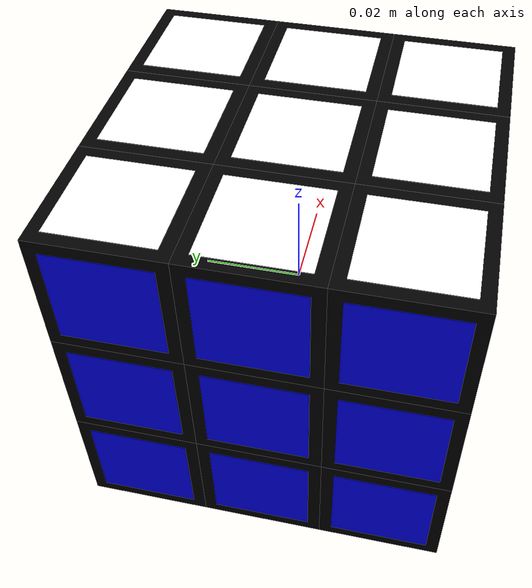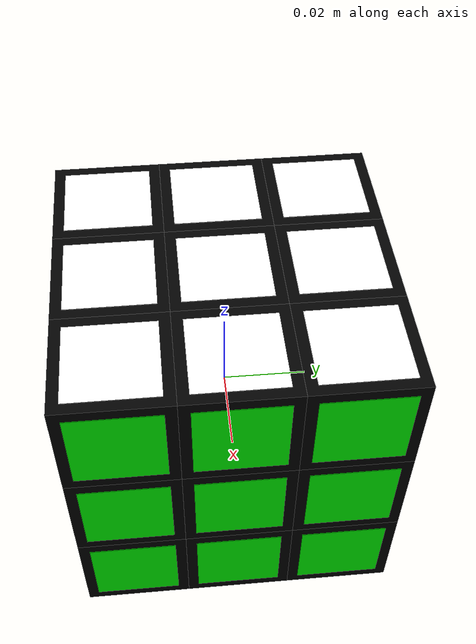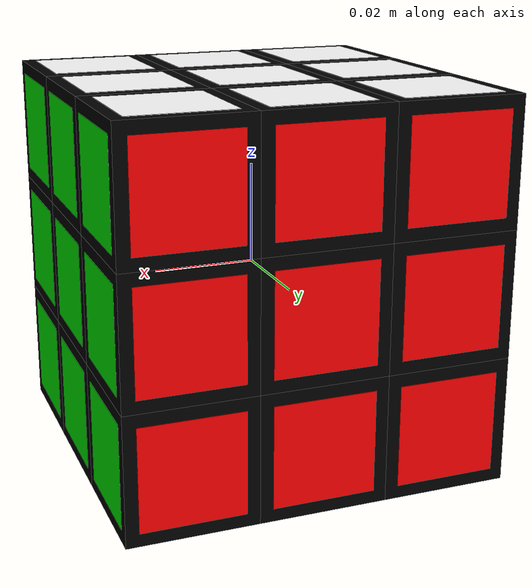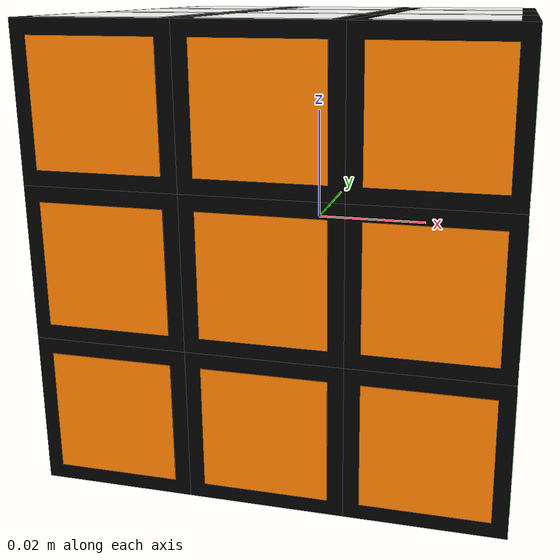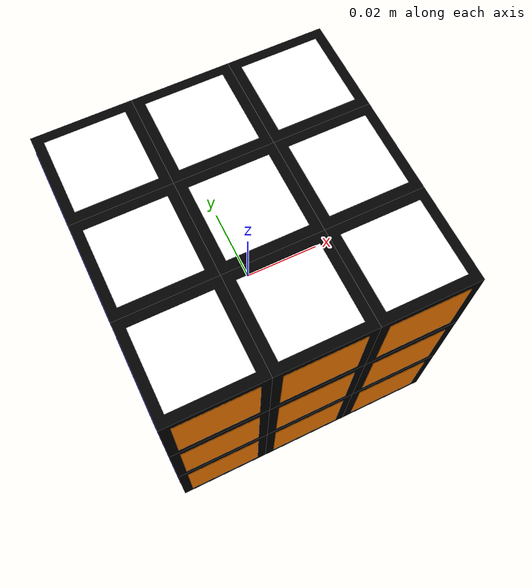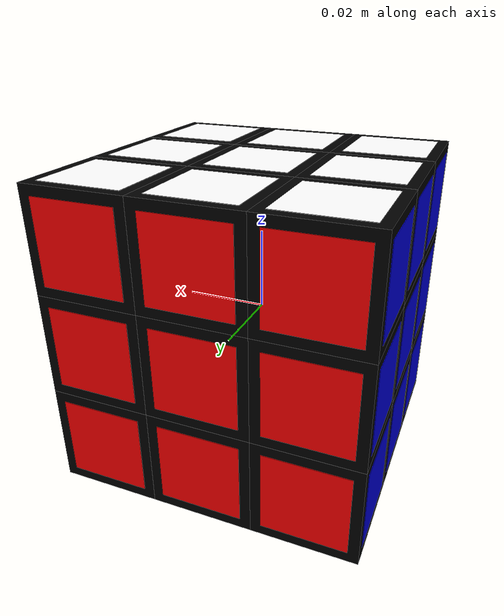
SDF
<?xml version="1.0"?>
<!-- Autogenerated by rubiks_cube.ipynb -->
<sdf version="1.7">
  <model name="rubiks_cube">
    <link name="center"/>

    <link name="box_m1_m1_m1">
      <pose>-0.025 -0.025 -0.025 0 0 0</pose>
      <inertial>
        <mass>0.03</mass>
        <inertia>
          <ixx>0.0003125</ixx>
          <ixy>0.0</ixy>
          <ixz>0.0</ixz>
          <iyy>0.0003125</iyy>
          <iyz>0.0</iyz>
          <izz>0.0003125</izz>
        </inertia>
      </inertial>
      <collision name="collision">
        <geometry>
          <box>
            <size>0.025 0.025 0.025</size>
          </box>
        </geometry>
        <drake:proximity_properties>
          <drake:compliant_hydroelastic/>
          <drake:hydroelastic_modulus>1e7</drake:hydroelastic_modulus>
          <drake:mu_static>100.0</drake:mu_static>
          <drake:mu_dynamic>1.0</drake:mu_dynamic>
          <drake:hunt_crossley_dissipation>1.25</drake:hunt_crossley_dissipation>
        </drake:proximity_properties>
      </collision>
      <visual name="black">
        <geometry>
          <box>
            <size>0.025 0.025 0.025</size>
          </box>
        </geometry>
        <material>
          <diffuse>0 0 0 1</diffuse>
        </material>
      </visual>
      <visual name="x">
        <pose>-0.0125 0 0 0 0 0</pose>
        <geometry>
          <box>
            <size>0.0002 0.02 0.02</size>
          </box>
        </geometry>
        <material>
          <diffuse>0 0 1 1</diffuse>
        </material>
      </visual>
      <visual name="y">
        <pose>0 -0.0125 0 0 0 0</pose>
        <geometry>
          <box>
            <size>0.02 0.0002 0.02</size>
          </box>
        </geometry>
        <material>
          <diffuse>1 0.5 0 1</diffuse>
        </material>
      </visual>
      <visual name="z">
        <pose>0 0 -0.0125 0 0 0</pose>
        <geometry>
          <box>
            <size>0.02 0.02 0.0002</size>
          </box>
        </geometry>
        <material>
          <diffuse>1 1 0 1</diffuse>
        </material>
      </visual>
    </link>
    <joint name="ball_m1_m1_m1" type="ball">
        <pose>0.025 0.025 0.025 0 0 0</pose> <!-- in child frame -->
        <parent>center</parent>
        <child>box_m1_m1_m1</child>
        <axis>
            <dynamics><damping>0.1</damping></dynamics>
            <limit><effort>0</effort></limit>
        </axis>
    </joint>

    <link name="box_m1_m1_0">
      <pose>-0.025 -0.025 0.0 0 0 0</pose>
      <inertial>
        <mass>0.03</mass>
        <inertia>
          <ixx>0.0003125</ixx>
          <ixy>0.0</ixy>
          <ixz>0.0</ixz>
          <iyy>0.0003125</iyy>
          <iyz>0.0</iyz>
          <izz>0.0003125</izz>
        </inertia>
      </inertial>
      <collision name="collision">
        <geometry>
          <box>
            <size>0.025 0.025 0.025</size>
          </box>
        </geometry>
        <drake:proximity_properties>
          <drake:compliant_hydroelastic/>
          <drake:hydroelastic_modulus>1e7</drake:hydroelastic_modulus>
          <drake:mu_static>100.0</drake:mu_static>
          <drake:mu_dynamic>1.0</drake:mu_dynamic>
          <drake:hunt_crossley_dissipation>1.25</drake:hunt_crossley_dissipation>
        </drake:proximity_properties>
      </collision>
      <visual name="black">
        <geometry>
          <box>
            <size>0.025 0.025 0.025</size>
          </box>
        </geometry>
        <material>
          <diffuse>0 0 0 1</diffuse>
        </material>
      </visual>
      <visual name="x">
        <pose>-0.0125 0 0 0 0 0</pose>
        <geometry>
          <box>
            <size>0.0002 0.02 0.02</size>
          </box>
        </geometry>
        <material>
          <diffuse>0 0 1 1</diffuse>
        </material>
      </visual>
      <visual name="y">
        <pose>0 -0.0125 0 0 0 0</pose>
        <geometry>
          <box>
            <size>0.02 0.0002 0.02</size>
          </box>
        </geometry>
        <material>
          <diffuse>1 0.5 0 1</diffuse>
        </material>
      </visual>
      <visual name="z">
        <pose>0 0 0.0 0 0 0</pose>
        <geometry>
          <box>
            <size>0.02 0.02 0.0002</size>
          </box>
        </geometry>
        <material>
          <diffuse>1 1 1 1</diffuse>
        </material>
      </visual>
    </link>
    <joint name="ball_m1_m1_0" type="ball">
        <pose>0.025 0.025 0.0 0 0 0</pose> <!-- in child frame -->
        <parent>center</parent>
        <child>box_m1_m1_0</child>
        <axis>
            <dynamics><damping>0.1</damping></dynamics>
            <limit><effort>0</effort></limit>
        </axis>
    </joint>

    <link name="box_m1_m1_1">
      <pose>-0.025 -0.025 0.025 0 0 0</pose>
      <inertial>
        <mass>0.03</mass>
        <inertia>
          <ixx>0.0003125</ixx>
          <ixy>0.0</ixy>
          <ixz>0.0</ixz>
          <iyy>0.0003125</iyy>
          <iyz>0.0</iyz>
          <izz>0.0003125</izz>
        </inertia>
      </inertial>
      <collision name="collision">
        <geometry>
          <box>
            <size>0.025 0.025 0.025</size>
          </box>
        </geometry>
        <drake:proximity_properties>
          <drake:compliant_hydroelastic/>
          <drake:hydroelastic_modulus>1e7</drake:hydroelastic_modulus>
          <drake:mu_static>100.0</drake:mu_static>
          <drake:mu_dynamic>1.0</drake:mu_dynamic>
          <drake:hunt_crossley_dissipation>1.25</drake:hunt_crossley_dissipation>
        </drake:proximity_properties>
      </collision>
      <visual name="black">
        <geometry>
          <box>
            <size>0.025 0.025 0.025</size>
          </box>
        </geometry>
        <material>
          <diffuse>0 0 0 1</diffuse>
        </material>
      </visual>
      <visual name="x">
        <pose>-0.0125 0 0 0 0 0</pose>
        <geometry>
          <box>
            <size>0.0002 0.02 0.02</size>
          </box>
        </geometry>
        <material>
          <diffuse>0 0 1 1</diffuse>
        </material>
      </visual>
      <visual name="y">
        <pose>0 -0.0125 0 0 0 0</pose>
        <geometry>
          <box>
            <size>0.02 0.0002 0.02</size>
          </box>
        </geometry>
        <material>
          <diffuse>1 0.5 0 1</diffuse>
        </material>
      </visual>
      <visual name="z">
        <pose>0 0 0.0125 0 0 0</pose>
        <geometry>
          <box>
            <size>0.02 0.02 0.0002</size>
          </box>
        </geometry>
        <material>
          <diffuse>1 1 1 1</diffuse>
        </material>
      </visual>
    </link>
    <joint name="ball_m1_m1_1" type="ball">
        <pose>0.025 0.025 -0.025 0 0 0</pose> <!-- in child frame -->
        <parent>center</parent>
        <child>box_m1_m1_1</child>
        <axis>
            <dynamics><damping>0.1</damping></dynamics>
            <limit><effort>0</effort></limit>
        </axis>
    </joint>

    <link name="box_m1_0_m1">
      <pose>-0.025 0.0 -0.025 0 0 0</pose>
      <inertial>
        <mass>0.03</mass>
        <inertia>
          <ixx>0.0003125</ixx>
          <ixy>0.0</ixy>
          <ixz>0.0</ixz>
          <iyy>0.0003125</iyy>
          <iyz>0.0</iyz>
          <izz>0.0003125</izz>
        </inertia>
      </inertial>
      <collision name="collision">
        <geometry>
          <box>
            <size>0.025 0.025 0.025</size>
          </box>
        </geometry>
        <drake:proximity_properties>
          <drake:compliant_hydroelastic/>
          <drake:hydroelastic_modulus>1e7</drake:hydroelastic_modulus>
          <drake:mu_static>100.0</drake:mu_static>
          <drake:mu_dynamic>1.0</drake:mu_dynamic>
          <drake:hunt_crossley_dissipation>1.25</drake:hunt_crossley_dissipation>
        </drake:proximity_properties>
      </collision>
      <visual name="black">
        <geometry>
          <box>
            <size>0.025 0.025 0.025</size>
          </box>
        </geometry>
        <material>
          <diffuse>0 0 0 1</diffuse>
        </material>
      </visual>
      <visual name="x">
        <pose>-0.0125 0 0 0 0 0</pose>
        <geometry>
          <box>
            <size>0.0002 0.02 0.02</size>
          </box>
        </geometry>
        <material>
          <diffuse>0 0 1 1</diffuse>
        </material>
      </visual>
      <visual name="y">
        <pose>0 0.0 0 0 0 0</pose>
        <geometry>
          <box>
            <size>0.02 0.0002 0.02</size>
          </box>
        </geometry>
        <material>
          <diffuse>1 0 0 1</diffuse>
        </material>
      </visual>
      <visual name="z">
        <pose>0 0 -0.0125 0 0 0</pose>
        <geometry>
          <box>
            <size>0.02 0.02 0.0002</size>
          </box>
        </geometry>
        <material>
          <diffuse>1 1 0 1</diffuse>
        </material>
      </visual>
    </link>
    <joint name="ball_m1_0_m1" type="ball">
        <pose>0.025 0.0 0.025 0 0 0</pose> <!-- in child frame -->
        <parent>center</parent>
        <child>box_m1_0_m1</child>
        <axis>
            <dynamics><damping>0.1</damping></dynamics>
            <limit><effort>0</effort></limit>
        </axis>
    </joint>

    <link name="box_m1_0_0">
      <pose>-0.025 0.0 0.0 0 0 0</pose>
      <inertial>
        <mass>0.03</mass>
        <inertia>
          <ixx>0.0003125</ixx>
          <ixy>0.0</ixy>
          <ixz>0.0</ixz>
          <iyy>0.0003125</iyy>
          <iyz>0.0</iyz>
          <izz>0.0003125</izz>
        </inertia>
      </inertial>
      <collision name="collision">
        <geometry>
          <box>
            <size>0.025 0.025 0.025</size>
          </box>
        </geometry>
        <drake:proximity_properties>
          <drake:compliant_hydroelastic/>
          <drake:hydroelastic_modulus>1e7</drake:hydroelastic_modulus>
          <drake:mu_static>100.0</drake:mu_static>
          <drake:mu_dynamic>1.0</drake:mu_dynamic>
          <drake:hunt_crossley_dissipation>1.25</drake:hunt_crossley_dissipation>
        </drake:proximity_properties>
      </collision>
      <visual name="black">
        <geometry>
          <box>
            <size>0.025 0.025 0.025</size>
          </box>
        </geometry>
        <material>
          <diffuse>0 0 0 1</diffuse>
        </material>
      </visual>
      <visual name="x">
        <pose>-0.0125 0 0 0 0 0</pose>
        <geometry>
          <box>
            <size>0.0002 0.02 0.02</size>
          </box>
        </geometry>
        <material>
          <diffuse>0 0 1 1</diffuse>
        </material>
      </visual>
      <visual name="y">
        <pose>0 0.0 0 0 0 0</pose>
        <geometry>
          <box>
            <size>0.02 0.0002 0.02</size>
          </box>
        </geometry>
        <material>
          <diffuse>1 0 0 1</diffuse>
        </material>
      </visual>
      <visual name="z">
        <pose>0 0 0.0 0 0 0</pose>
        <geometry>
          <box>
            <size>0.02 0.02 0.0002</size>
          </box>
        </geometry>
        <material>
          <diffuse>1 1 1 1</diffuse>
        </material>
      </visual>
    </link>
    <joint name="ball_m1_0_0" type="ball">
        <pose>0.025 0.0 0.0 0 0 0</pose> <!-- in child frame -->
        <parent>center</parent>
        <child>box_m1_0_0</child>
        <axis>
            <dynamics><damping>0.1</damping></dynamics>
            <limit><effort>0</effort></limit>
        </axis>
    </joint>

    <link name="box_m1_0_1">
      <pose>-0.025 0.0 0.025 0 0 0</pose>
      <inertial>
        <mass>0.03</mass>
        <inertia>
          <ixx>0.0003125</ixx>
          <ixy>0.0</ixy>
          <ixz>0.0</ixz>
          <iyy>0.0003125</iyy>
          <iyz>0.0</iyz>
          <izz>0.0003125</izz>
        </inertia>
      </inertial>
      <collision name="collision">
        <geometry>
          <box>
            <size>0.025 0.025 0.025</size>
          </box>
        </geometry>
        <drake:proximity_properties>
          <drake:compliant_hydroelastic/>
          <drake:hydroelastic_modulus>1e7</drake:hydroelastic_modulus>
          <drake:mu_static>100.0</drake:mu_static>
          <drake:mu_dynamic>1.0</drake:mu_dynamic>
          <drake:hunt_crossley_dissipation>1.25</drake:hunt_crossley_dissipation>
        </drake:proximity_properties>
      </collision>
      <visual name="black">
        <geometry>
          <box>
            <size>0.025 0.025 0.025</size>
          </box>
        </geometry>
        <material>
          <diffuse>0 0 0 1</diffuse>
        </material>
      </visual>
      <visual name="x">
        <pose>-0.0125 0 0 0 0 0</pose>
        <geometry>
          <box>
            <size>0.0002 0.02 0.02</size>
          </box>
        </geometry>
        <material>
          <diffuse>0 0 1 1</diffuse>
        </material>
      </visual>
      <visual name="y">
        <pose>0 0.0 0 0 0 0</pose>
        <geometry>
          <box>
            <size>0.02 0.0002 0.02</size>
          </box>
        </geometry>
        <material>
          <diffuse>1 0 0 1</diffuse>
        </material>
      </visual>
      <visual name="z">
        <pose>0 0 0.0125 0 0 0</pose>
        <geometry>
          <box>
            <size>0.02 0.02 0.0002</size>
          </box>
        </geometry>
        <material>
          <diffuse>1 1 1 1</diffuse>
        </material>
      </visual>
    </link>
    <joint name="ball_m1_0_1" type="ball">
        <pose>0.025 0.0 -0.025 0 0 0</pose> <!-- in child frame -->
        <parent>center</parent>
        <child>box_m1_0_1</child>
        <axis>
            <dynamics><damping>0.1</damping></dynamics>
            <limit><effort>0</effort></limit>
        </axis>
    </joint>

    <link name="box_m1_1_m1">
      <pose>-0.025 0.025 -0.025 0 0 0</pose>
      <inertial>
        <mass>0.03</mass>
        <inertia>
          <ixx>0.0003125</ixx>
          <ixy>0.0</ixy>
          <ixz>0.0</ixz>
          <iyy>0.0003125</iyy>
          <iyz>0.0</iyz>
          <izz>0.0003125</izz>
        </inertia>
      </inertial>
      <collision name="collision">
        <geometry>
          <box>
            <size>0.025 0.025 0.025</size>
          </box>
        </geometry>
        <drake:proximity_properties>
          <drake:compliant_hydroelastic/>
          <drake:hydroelastic_modulus>1e7</drake:hydroelastic_modulus>
          <drake:mu_static>100.0</drake:mu_static>
          <drake:mu_dynamic>1.0</drake:mu_dynamic>
          <drake:hunt_crossley_dissipation>1.25</drake:hunt_crossley_dissipation>
        </drake:proximity_properties>
      </collision>
      <visual name="black">
        <geometry>
          <box>
            <size>0.025 0.025 0.025</size>
          </box>
        </geometry>
        <material>
          <diffuse>0 0 0 1</diffuse>
        </material>
      </visual>
      <visual name="x">
        <pose>-0.0125 0 0 0 0 0</pose>
        <geometry>
          <box>
            <size>0.0002 0.02 0.02</size>
          </box>
        </geometry>
        <material>
          <diffuse>0 0 1 1</diffuse>
        </material>
      </visual>
      <visual name="y">
        <pose>0 0.0125 0 0 0 0</pose>
        <geometry>
          <box>
            <size>0.02 0.0002 0.02</size>
          </box>
        </geometry>
        <material>
          <diffuse>1 0 0 1</diffuse>
        </material>
      </visual>
      <visual name="z">
        <pose>0 0 -0.0125 0 0 0</pose>
        <geometry>
          <box>
            <size>0.02 0.02 0.0002</size>
          </box>
        </geometry>
        <material>
          <diffuse>1 1 0 1</diffuse>
        </material>
      </visual>
    </link>
    <joint name="ball_m1_1_m1" type="ball">
        <pose>0.025 -0.025 0.025 0 0 0</pose> <!-- in child frame -->
        <parent>center</parent>
        <child>box_m1_1_m1</child>
        <axis>
            <dynamics><damping>0.1</damping></dynamics>
            <limit><effort>0</effort></limit>
        </axis>
    </joint>

    <link name="box_m1_1_0">
      <pose>-0.025 0.025 0.0 0 0 0</pose>
      <inertial>
        <mass>0.03</mass>
        <inertia>
          <ixx>0.0003125</ixx>
          <ixy>0.0</ixy>
          <ixz>0.0</ixz>
          <iyy>0.0003125</iyy>
          <iyz>0.0</iyz>
          <izz>0.0003125</izz>
        </inertia>
      </inertial>
      <collision name="collision">
        <geometry>
          <box>
            <size>0.025 0.025 0.025</size>
          </box>
        </geometry>
        <drake:proximity_properties>
          <drake:compliant_hydroelastic/>
          <drake:hydroelastic_modulus>1e7</drake:hydroelastic_modulus>
          <drake:mu_static>100.0</drake:mu_static>
          <drake:mu_dynamic>1.0</drake:mu_dynamic>
          <drake:hunt_crossley_dissipation>1.25</drake:hunt_crossley_dissipation>
        </drake:proximity_properties>
      </collision>
      <visual name="black">
        <geometry>
          <box>
            <size>0.025 0.025 0.025</size>
          </box>
        </geometry>
        <material>
          <diffuse>0 0 0 1</diffuse>
        </material>
      </visual>
      <visual name="x">
        <pose>-0.0125 0 0 0 0 0</pose>
        <geometry>
          <box>
            <size>0.0002 0.02 0.02</size>
          </box>
        </geometry>
        <material>
          <diffuse>0 0 1 1</diffuse>
        </material>
      </visual>
      <visual name="y">
        <pose>0 0.0125 0 0 0 0</pose>
        <geometry>
          <box>
            <size>0.02 0.0002 0.02</size>
          </box>
        </geometry>
        <material>
          <diffuse>1 0 0 1</diffuse>
        </material>
      </visual>
      <visual name="z">
        <pose>0 0 0.0 0 0 0</pose>
        <geometry>
          <box>
            <size>0.02 0.02 0.0002</size>
          </box>
        </geometry>
        <material>
          <diffuse>1 1 1 1</diffuse>
        </material>
      </visual>
    </link>
    <joint name="ball_m1_1_0" type="ball">
        <pose>0.025 -0.025 0.0 0 0 0</pose> <!-- in child frame -->
        <parent>center</parent>
        <child>box_m1_1_0</child>
        <axis>
            <dynamics><damping>0.1</damping></dynamics>
            <limit><effort>0</effort></limit>
        </axis>
    </joint>

    <link name="box_m1_1_1">
      <pose>-0.025 0.025 0.025 0 0 0</pose>
      <inertial>
        <mass>0.03</mass>
        <inertia>
          <ixx>0.0003125</ixx>
          <ixy>0.0</ixy>
          <ixz>0.0</ixz>
          <iyy>0.0003125</iyy>
          <iyz>0.0</iyz>
          <izz>0.0003125</izz>
        </inertia>
      </inertial>
      <collision name="collision">
        <geometry>
          <box>
            <size>0.025 0.025 0.025</size>
          </box>
        </geometry>
        <drake:proximity_properties>
          <drake:compliant_hydroelastic/>
          <drake:hydroelastic_modulus>1e7</drake:hydroelastic_modulus>
          <drake:mu_static>100.0</drake:mu_static>
          <drake:mu_dynamic>1.0</drake:mu_dynamic>
          <drake:hunt_crossley_dissipation>1.25</drake:hunt_crossley_dissipation>
        </drake:proximity_properties>
      </collision>
      <visual name="black">
        <geometry>
          <box>
            <size>0.025 0.025 0.025</size>
          </box>
        </geometry>
        <material>
          <diffuse>0 0 0 1</diffuse>
        </material>
      </visual>
      <visual name="x">
        <pose>-0.0125 0 0 0 0 0</pose>
        <geometry>
          <box>
            <size>0.0002 0.02 0.02</size>
          </box>
        </geometry>
        <material>
          <diffuse>0 0 1 1</diffuse>
        </material>
      </visual>
      <visual name="y">
        <pose>0 0.0125 0 0 0 0</pose>
        <geometry>
          <box>
            <size>0.02 0.0002 0.02</size>
          </box>
        </geometry>
        <material>
          <diffuse>1 0 0 1</diffuse>
        </material>
      </visual>
      <visual name="z">
        <pose>0 0 0.0125 0 0 0</pose>
        <geometry>
          <box>
            <size>0.02 0.02 0.0002</size>
          </box>
        </geometry>
        <material>
          <diffuse>1 1 1 1</diffuse>
        </material>
      </visual>
    </link>
    <joint name="ball_m1_1_1" type="ball">
        <pose>0.025 -0.025 -0.025 0 0 0</pose> <!-- in child frame -->
        <parent>center</parent>
        <child>box_m1_1_1</child>
        <axis>
            <dynamics><damping>0.1</damping></dynamics>
            <limit><effort>0</effort></limit>
        </axis>
    </joint>

    <link name="box_0_m1_m1">
      <pose>0.0 -0.025 -0.025 0 0 0</pose>
      <inertial>
        <mass>0.03</mass>
        <inertia>
          <ixx>0.0003125</ixx>
          <ixy>0.0</ixy>
          <ixz>0.0</ixz>
          <iyy>0.0003125</iyy>
          <iyz>0.0</iyz>
          <izz>0.0003125</izz>
        </inertia>
      </inertial>
      <collision name="collision">
        <geometry>
          <box>
            <size>0.025 0.025 0.025</size>
          </box>
        </geometry>
        <drake:proximity_properties>
          <drake:compliant_hydroelastic/>
          <drake:hydroelastic_modulus>1e7</drake:hydroelastic_modulus>
          <drake:mu_static>100.0</drake:mu_static>
          <drake:mu_dynamic>1.0</drake:mu_dynamic>
          <drake:hunt_crossley_dissipation>1.25</drake:hunt_crossley_dissipation>
        </drake:proximity_properties>
      </collision>
      <visual name="black">
        <geometry>
          <box>
            <size>0.025 0.025 0.025</size>
          </box>
        </geometry>
        <material>
          <diffuse>0 0 0 1</diffuse>
        </material>
      </visual>
      <visual name="x">
        <pose>0.0 0 0 0 0 0</pose>
        <geometry>
          <box>
            <size>0.0002 0.02 0.02</size>
          </box>
        </geometry>
        <material>
          <diffuse>0 1 0 1</diffuse>
        </material>
      </visual>
      <visual name="y">
        <pose>0 -0.0125 0 0 0 0</pose>
        <geometry>
          <box>
            <size>0.02 0.0002 0.02</size>
          </box>
        </geometry>
        <material>
          <diffuse>1 0.5 0 1</diffuse>
        </material>
      </visual>
      <visual name="z">
        <pose>0 0 -0.0125 0 0 0</pose>
        <geometry>
          <box>
            <size>0.02 0.02 0.0002</size>
          </box>
        </geometry>
        <material>
          <diffuse>1 1 0 1</diffuse>
        </material>
      </visual>
    </link>
    <joint name="ball_0_m1_m1" type="ball">
        <pose>0.0 0.025 0.025 0 0 0</pose> <!-- in child frame -->
        <parent>center</parent>
        <child>box_0_m1_m1</child>
        <axis>
            <dynamics><damping>0.1</damping></dynamics>
            <limit><effort>0</effort></limit>
        </axis>
    </joint>

    <link name="box_0_m1_0">
      <pose>0.0 -0.025 0.0 0 0 0</pose>
      <inertial>
        <mass>0.03</mass>
        <inertia>
          <ixx>0.0003125</ixx>
          <ixy>0.0</ixy>
          <ixz>0.0</ixz>
          <iyy>0.0003125</iyy>
          <iyz>0.0</iyz>
          <izz>0.0003125</izz>
        </inertia>
      </inertial>
      <collision name="collision">
        <geometry>
          <box>
            <size>0.025 0.025 0.025</size>
          </box>
        </geometry>
        <drake:proximity_properties>
          <drake:compliant_hydroelastic/>
          <drake:hydroelastic_modulus>1e7</drake:hydroelastic_modulus>
          <drake:mu_static>100.0</drake:mu_static>
          <drake:mu_dynamic>1.0</drake:mu_dynamic>
          <drake:hunt_crossley_dissipation>1.25</drake:hunt_crossley_dissipation>
        </drake:proximity_properties>
      </collision>
      <visual name="black">
        <geometry>
          <box>
            <size>0.025 0.025 0.025</size>
          </box>
        </geometry>
        <material>
          <diffuse>0 0 0 1</diffuse>
        </material>
      </visual>
      <visual name="x">
        <pose>0.0 0 0 0 0 0</pose>
        <geometry>
          <box>
            <size>0.0002 0.02 0.02</size>
          </box>
        </geometry>
        <material>
          <diffuse>0 1 0 1</diffuse>
        </material>
      </visual>
      <visual name="y">
        <pose>0 -0.0125 0 0 0 0</pose>
        <geometry>
          <box>
            <size>0.02 0.0002 0.02</size>
          </box>
        </geometry>
        <material>
          <diffuse>1 0.5 0 1</diffuse>
        </material>
      </visual>
      <visual name="z">
        <pose>0 0 0.0 0 0 0</pose>
        <geometry>
          <box>
            <size>0.02 0.02 0.0002</size>
          </box>
        </geometry>
        <material>
          <diffuse>1 1 1 1</diffuse>
        </material>
      </visual>
    </link>
    <joint name="ball_0_m1_0" type="ball">
        <pose>0.0 0.025 0.0 0 0 0</pose> <!-- in child frame -->
        <parent>center</parent>
        <child>box_0_m1_0</child>
        <axis>
            <dynamics><damping>0.1</damping></dynamics>
            <limit><effort>0</effort></limit>
        </axis>
    </joint>

    <link name="box_0_m1_1">
      <pose>0.0 -0.025 0.025 0 0 0</pose>
      <inertial>
        <mass>0.03</mass>
        <inertia>
          <ixx>0.0003125</ixx>
          <ixy>0.0</ixy>
          <ixz>0.0</ixz>
          <iyy>0.0003125</iyy>
          <iyz>0.0</iyz>
          <izz>0.0003125</izz>
        </inertia>
      </inertial>
      <collision name="collision">
        <geometry>
          <box>
            <size>0.025 0.025 0.025</size>
          </box>
        </geometry>
        <drake:proximity_properties>
          <drake:compliant_hydroelastic/>
          <drake:hydroelastic_modulus>1e7</drake:hydroelastic_modulus>
          <drake:mu_static>100.0</drake:mu_static>
          <drake:mu_dynamic>1.0</drake:mu_dynamic>
          <drake:hunt_crossley_dissipation>1.25</drake:hunt_crossley_dissipation>
        </drake:proximity_properties>
      </collision>
      <visual name="black">
        <geometry>
          <box>
            <size>0.025 0.025 0.025</size>
          </box>
        </geometry>
        <material>
          <diffuse>0 0 0 1</diffuse>
        </material>
      </visual>
      <visual name="x">
        <pose>0.0 0 0 0 0 0</pose>
        <geometry>
          <box>
            <size>0.0002 0.02 0.02</size>
          </box>
        </geometry>
        <material>
          <diffuse>0 1 0 1</diffuse>
        </material>
      </visual>
      <visual name="y">
        <pose>0 -0.0125 0 0 0 0</pose>
        <geometry>
          <box>
            <size>0.02 0.0002 0.02</size>
          </box>
        </geometry>
        <material>
          <diffuse>1 0.5 0 1</diffuse>
        </material>
      </visual>
      <visual name="z">
        <pose>0 0 0.0125 0 0 0</pose>
        <geometry>
          <box>
            <size>0.02 0.02 0.0002</size>
          </box>
        </geometry>
        <material>
          <diffuse>1 1 1 1</diffuse>
        </material>
      </visual>
    </link>
    <joint name="ball_0_m1_1" type="ball">
        <pose>0.0 0.025 -0.025 0 0 0</pose> <!-- in child frame -->
        <parent>center</parent>
        <child>box_0_m1_1</child>
        <axis>
            <dynamics><damping>0.1</damping></dynamics>
            <limit><effort>0</effort></limit>
        </axis>
    </joint>

    <link name="box_0_0_m1">
      <pose>0.0 0.0 -0.025 0 0 0</pose>
      <inertial>
        <mass>0.03</mass>
        <inertia>
          <ixx>0.0003125</ixx>
          <ixy>0.0</ixy>
          <ixz>0.0</ixz>
          <iyy>0.0003125</iyy>
          <iyz>0.0</iyz>
          <izz>0.0003125</izz>
        </inertia>
      </inertial>
      <collision name="collision">
        <geometry>
          <box>
            <size>0.025 0.025 0.025</size>
          </box>
        </geometry>
        <drake:proximity_properties>
          <drake:compliant_hydroelastic/>
          <drake:hydroelastic_modulus>1e7</drake:hydroelastic_modulus>
          <drake:mu_static>100.0</drake:mu_static>
          <drake:mu_dynamic>1.0</drake:mu_dynamic>
          <drake:hunt_crossley_dissipation>1.25</drake:hunt_crossley_dissipation>
        </drake:proximity_properties>
      </collision>
      <visual name="black">
        <geometry>
          <box>
            <size>0.025 0.025 0.025</size>
          </box>
        </geometry>
        <material>
          <diffuse>0 0 0 1</diffuse>
        </material>
      </visual>
      <visual name="x">
        <pose>0.0 0 0 0 0 0</pose>
        <geometry>
          <box>
            <size>0.0002 0.02 0.02</size>
          </box>
        </geometry>
        <material>
          <diffuse>0 1 0 1</diffuse>
        </material>
      </visual>
      <visual name="y">
        <pose>0 0.0 0 0 0 0</pose>
        <geometry>
          <box>
            <size>0.02 0.0002 0.02</size>
          </box>
        </geometry>
        <material>
          <diffuse>1 0 0 1</diffuse>
        </material>
      </visual>
      <visual name="z">
        <pose>0 0 -0.0125 0 0 0</pose>
        <geometry>
          <box>
            <size>0.02 0.02 0.0002</size>
          </box>
        </geometry>
        <material>
          <diffuse>1 1 0 1</diffuse>
        </material>
      </visual>
    </link>
    <joint name="ball_0_0_m1" type="ball">
        <pose>0.0 0.0 0.025 0 0 0</pose> <!-- in child frame -->
        <parent>center</parent>
        <child>box_0_0_m1</child>
        <axis>
            <dynamics><damping>0.1</damping></dynamics>
            <limit><effort>0</effort></limit>
        </axis>
    </joint>

    <link name="box_0_0_1">
      <pose>0.0 0.0 0.025 0 0 0</pose>
      <inertial>
        <mass>0.03</mass>
        <inertia>
          <ixx>0.0003125</ixx>
          <ixy>0.0</ixy>
          <ixz>0.0</ixz>
          <iyy>0.0003125</iyy>
          <iyz>0.0</iyz>
          <izz>0.0003125</izz>
        </inertia>
      </inertial>
      <collision name="collision">
        <geometry>
          <box>
            <size>0.025 0.025 0.025</size>
          </box>
        </geometry>
        <drake:proximity_properties>
          <drake:compliant_hydroelastic/>
          <drake:hydroelastic_modulus>1e7</drake:hydroelastic_modulus>
          <drake:mu_static>100.0</drake:mu_static>
          <drake:mu_dynamic>1.0</drake:mu_dynamic>
          <drake:hunt_crossley_dissipation>1.25</drake:hunt_crossley_dissipation>
        </drake:proximity_properties>
      </collision>
      <visual name="black">
        <geometry>
          <box>
            <size>0.025 0.025 0.025</size>
          </box>
        </geometry>
        <material>
          <diffuse>0 0 0 1</diffuse>
        </material>
      </visual>
      <visual name="x">
        <pose>0.0 0 0 0 0 0</pose>
        <geometry>
          <box>
            <size>0.0002 0.02 0.02</size>
          </box>
        </geometry>
        <material>
          <diffuse>0 1 0 1</diffuse>
        </material>
      </visual>
      <visual name="y">
        <pose>0 0.0 0 0 0 0</pose>
        <geometry>
          <box>
            <size>0.02 0.0002 0.02</size>
          </box>
        </geometry>
        <material>
          <diffuse>1 0 0 1</diffuse>
        </material>
      </visual>
      <visual name="z">
        <pose>0 0 0.0125 0 0 0</pose>
        <geometry>
          <box>
            <size>0.02 0.02 0.0002</size>
          </box>
        </geometry>
        <material>
          <diffuse>1 1 1 1</diffuse>
        </material>
      </visual>
    </link>
    <joint name="ball_0_0_1" type="ball">
        <pose>0.0 0.0 -0.025 0 0 0</pose> <!-- in child frame -->
        <parent>center</parent>
        <child>box_0_0_1</child>
        <axis>
            <dynamics><damping>0.1</damping></dynamics>
            <limit><effort>0</effort></limit>
        </axis>
    </joint>

    <link name="box_0_1_m1">
      <pose>0.0 0.025 -0.025 0 0 0</pose>
      <inertial>
        <mass>0.03</mass>
        <inertia>
          <ixx>0.0003125</ixx>
          <ixy>0.0</ixy>
          <ixz>0.0</ixz>
          <iyy>0.0003125</iyy>
          <iyz>0.0</iyz>
          <izz>0.0003125</izz>
        </inertia>
      </inertial>
      <collision name="collision">
        <geometry>
          <box>
            <size>0.025 0.025 0.025</size>
          </box>
        </geometry>
        <drake:proximity_properties>
          <drake:compliant_hydroelastic/>
          <drake:hydroelastic_modulus>1e7</drake:hydroelastic_modulus>
          <drake:mu_static>100.0</drake:mu_static>
          <drake:mu_dynamic>1.0</drake:mu_dynamic>
          <drake:hunt_crossley_dissipation>1.25</drake:hunt_crossley_dissipation>
        </drake:proximity_properties>
      </collision>
      <visual name="black">
        <geometry>
          <box>
            <size>0.025 0.025 0.025</size>
          </box>
        </geometry>
        <material>
          <diffuse>0 0 0 1</diffuse>
        </material>
      </visual>
      <visual name="x">
        <pose>0.0 0 0 0 0 0</pose>
        <geometry>
          <box>
            <size>0.0002 0.02 0.02</size>
          </box>
        </geometry>
        <material>
          <diffuse>0 1 0 1</diffuse>
        </material>
      </visual>
      <visual name="y">
        <pose>0 0.0125 0 0 0 0</pose>
        <geometry>
          <box>
            <size>0.02 0.0002 0.02</size>
          </box>
        </geometry>
        <material>
          <diffuse>1 0 0 1</diffuse>
        </material>
      </visual>
      <visual name="z">
        <pose>0 0 -0.0125 0 0 0</pose>
        <geometry>
          <box>
            <size>0.02 0.02 0.0002</size>
          </box>
        </geometry>
        <material>
          <diffuse>1 1 0 1</diffuse>
        </material>
      </visual>
    </link>
    <joint name="ball_0_1_m1" type="ball">
        <pose>0.0 -0.025 0.025 0 0 0</pose> <!-- in child frame -->
        <parent>center</parent>
        <child>box_0_1_m1</child>
        <axis>
            <dynamics><damping>0.1</damping></dynamics>
            <limit><effort>0</effort></limit>
        </axis>
    </joint>

    <link name="box_0_1_0">
      <pose>0.0 0.025 0.0 0 0 0</pose>
      <inertial>
        <mass>0.03</mass>
        <inertia>
          <ixx>0.0003125</ixx>
          <ixy>0.0</ixy>
          <ixz>0.0</ixz>
          <iyy>0.0003125</iyy>
          <iyz>0.0</iyz>
          <izz>0.0003125</izz>
        </inertia>
      </inertial>
      <collision name="collision">
        <geometry>
          <box>
            <size>0.025 0.025 0.025</size>
          </box>
        </geometry>
        <drake:proximity_properties>
          <drake:compliant_hydroelastic/>
          <drake:hydroelastic_modulus>1e7</drake:hydroelastic_modulus>
          <drake:mu_static>100.0</drake:mu_static>
          <drake:mu_dynamic>1.0</drake:mu_dynamic>
          <drake:hunt_crossley_dissipation>1.25</drake:hunt_crossley_dissipation>
        </drake:proximity_properties>
      </collision>
      <visual name="black">
        <geometry>
          <box>
            <size>0.025 0.025 0.025</size>
          </box>
        </geometry>
        <material>
          <diffuse>0 0 0 1</diffuse>
        </material>
      </visual>
      <visual name="x">
        <pose>0.0 0 0 0 0 0</pose>
        <geometry>
          <box>
            <size>0.0002 0.02 0.02</size>
          </box>
        </geometry>
        <material>
          <diffuse>0 1 0 1</diffuse>
        </material>
      </visual>
      <visual name="y">
        <pose>0 0.0125 0 0 0 0</pose>
        <geometry>
          <box>
            <size>0.02 0.0002 0.02</size>
          </box>
        </geometry>
        <material>
          <diffuse>1 0 0 1</diffuse>
        </material>
      </visual>
      <visual name="z">
        <pose>0 0 0.0 0 0 0</pose>
        <geometry>
          <box>
            <size>0.02 0.02 0.0002</size>
          </box>
        </geometry>
        <material>
          <diffuse>1 1 1 1</diffuse>
        </material>
      </visual>
    </link>
    <joint name="ball_0_1_0" type="ball">
        <pose>0.0 -0.025 0.0 0 0 0</pose> <!-- in child frame -->
        <parent>center</parent>
        <child>box_0_1_0</child>
        <axis>
            <dynamics><damping>0.1</damping></dynamics>
            <limit><effort>0</effort></limit>
        </axis>
    </joint>

    <link name="box_0_1_1">
      <pose>0.0 0.025 0.025 0 0 0</pose>
      <inertial>
        <mass>0.03</mass>
        <inertia>
          <ixx>0.0003125</ixx>
          <ixy>0.0</ixy>
          <ixz>0.0</ixz>
          <iyy>0.0003125</iyy>
          <iyz>0.0</iyz>
          <izz>0.0003125</izz>
        </inertia>
      </inertial>
      <collision name="collision">
        <geometry>
          <box>
            <size>0.025 0.025 0.025</size>
          </box>
        </geometry>
        <drake:proximity_properties>
          <drake:compliant_hydroelastic/>
          <drake:hydroelastic_modulus>1e7</drake:hydroelastic_modulus>
          <drake:mu_static>100.0</drake:mu_static>
          <drake:mu_dynamic>1.0</drake:mu_dynamic>
          <drake:hunt_crossley_dissipation>1.25</drake:hunt_crossley_dissipation>
        </drake:proximity_properties>
      </collision>
      <visual name="black">
        <geometry>
          <box>
            <size>0.025 0.025 0.025</size>
          </box>
        </geometry>
        <material>
          <diffuse>0 0 0 1</diffuse>
        </material>
      </visual>
      <visual name="x">
        <pose>0.0 0 0 0 0 0</pose>
        <geometry>
          <box>
            <size>0.0002 0.02 0.02</size>
          </box>
        </geometry>
        <material>
          <diffuse>0 1 0 1</diffuse>
        </material>
      </visual>
      <visual name="y">
        <pose>0 0.0125 0 0 0 0</pose>
        <geometry>
          <box>
            <size>0.02 0.0002 0.02</size>
          </box>
        </geometry>
        <material>
          <diffuse>1 0 0 1</diffuse>
        </material>
      </visual>
      <visual name="z">
        <pose>0 0 0.0125 0 0 0</pose>
        <geometry>
          <box>
            <size>0.02 0.02 0.0002</size>
          </box>
        </geometry>
        <material>
          <diffuse>1 1 1 1</diffuse>
        </material>
      </visual>
    </link>
    <joint name="ball_0_1_1" type="ball">
        <pose>0.0 -0.025 -0.025 0 0 0</pose> <!-- in child frame -->
        <parent>center</parent>
        <child>box_0_1_1</child>
        <axis>
            <dynamics><damping>0.1</damping></dynamics>
            <limit><effort>0</effort></limit>
        </axis>
    </joint>

    <link name="box_1_m1_m1">
      <pose>0.025 -0.025 -0.025 0 0 0</pose>
      <inertial>
        <mass>0.03</mass>
        <inertia>
          <ixx>0.0003125</ixx>
          <ixy>0.0</ixy>
          <ixz>0.0</ixz>
          <iyy>0.0003125</iyy>
          <iyz>0.0</iyz>
          <izz>0.0003125</izz>
        </inertia>
      </inertial>
      <collision name="collision">
        <geometry>
          <box>
            <size>0.025 0.025 0.025</size>
          </box>
        </geometry>
        <drake:proximity_properties>
          <drake:compliant_hydroelastic/>
          <drake:hydroelastic_modulus>1e7</drake:hydroelastic_modulus>
          <drake:mu_static>100.0</drake:mu_static>
          <drake:mu_dynamic>1.0</drake:mu_dynamic>
          <drake:hunt_crossley_dissipation>1.25</drake:hunt_crossley_dissipation>
        </drake:proximity_properties>
      </collision>
      <visual name="black">
        <geometry>
          <box>
            <size>0.025 0.025 0.025</size>
          </box>
        </geometry>
        <material>
          <diffuse>0 0 0 1</diffuse>
        </material>
      </visual>
      <visual name="x">
        <pose>0.0125 0 0 0 0 0</pose>
        <geometry>
          <box>
            <size>0.0002 0.02 0.02</size>
          </box>
        </geometry>
        <material>
          <diffuse>0 1 0 1</diffuse>
        </material>
      </visual>
      <visual name="y">
        <pose>0 -0.0125 0 0 0 0</pose>
        <geometry>
          <box>
            <size>0.02 0.0002 0.02</size>
          </box>
        </geometry>
        <material>
          <diffuse>1 0.5 0 1</diffuse>
        </material>
      </visual>
      <visual name="z">
        <pose>0 0 -0.0125 0 0 0</pose>
        <geometry>
          <box>
            <size>0.02 0.02 0.0002</size>
          </box>
        </geometry>
        <material>
          <diffuse>1 1 0 1</diffuse>
        </material>
      </visual>
    </link>
    <joint name="ball_1_m1_m1" type="ball">
        <pose>-0.025 0.025 0.025 0 0 0</pose> <!-- in child frame -->
        <parent>center</parent>
        <child>box_1_m1_m1</child>
        <axis>
            <dynamics><damping>0.1</damping></dynamics>
            <limit><effort>0</effort></limit>
        </axis>
    </joint>

    <link name="box_1_m1_0">
      <pose>0.025 -0.025 0.0 0 0 0</pose>
      <inertial>
        <mass>0.03</mass>
        <inertia>
          <ixx>0.0003125</ixx>
          <ixy>0.0</ixy>
          <ixz>0.0</ixz>
          <iyy>0.0003125</iyy>
          <iyz>0.0</iyz>
          <izz>0.0003125</izz>
        </inertia>
      </inertial>
      <collision name="collision">
        <geometry>
          <box>
            <size>0.025 0.025 0.025</size>
          </box>
        </geometry>
        <drake:proximity_properties>
          <drake:compliant_hydroelastic/>
          <drake:hydroelastic_modulus>1e7</drake:hydroelastic_modulus>
          <drake:mu_static>100.0</drake:mu_static>
          <drake:mu_dynamic>1.0</drake:mu_dynamic>
          <drake:hunt_crossley_dissipation>1.25</drake:hunt_crossley_dissipation>
        </drake:proximity_properties>
      </collision>
      <visual name="black">
        <geometry>
          <box>
            <size>0.025 0.025 0.025</size>
          </box>
        </geometry>
        <material>
          <diffuse>0 0 0 1</diffuse>
        </material>
      </visual>
      <visual name="x">
        <pose>0.0125 0 0 0 0 0</pose>
        <geometry>
          <box>
            <size>0.0002 0.02 0.02</size>
          </box>
        </geometry>
        <material>
          <diffuse>0 1 0 1</diffuse>
        </material>
      </visual>
      <visual name="y">
        <pose>0 -0.0125 0 0 0 0</pose>
        <geometry>
          <box>
            <size>0.02 0.0002 0.02</size>
          </box>
        </geometry>
        <material>
          <diffuse>1 0.5 0 1</diffuse>
        </material>
      </visual>
      <visual name="z">
        <pose>0 0 0.0 0 0 0</pose>
        <geometry>
          <box>
            <size>0.02 0.02 0.0002</size>
          </box>
        </geometry>
        <material>
          <diffuse>1 1 1 1</diffuse>
        </material>
      </visual>
    </link>
    <joint name="ball_1_m1_0" type="ball">
        <pose>-0.025 0.025 0.0 0 0 0</pose> <!-- in child frame -->
        <parent>center</parent>
        <child>box_1_m1_0</child>
        <axis>
            <dynamics><damping>0.1</damping></dynamics>
            <limit><effort>0</effort></limit>
        </axis>
    </joint>

    <link name="box_1_m1_1">
      <pose>0.025 -0.025 0.025 0 0 0</pose>
      <inertial>
        <mass>0.03</mass>
        <inertia>
          <ixx>0.0003125</ixx>
          <ixy>0.0</ixy>
          <ixz>0.0</ixz>
          <iyy>0.0003125</iyy>
          <iyz>0.0</iyz>
          <izz>0.0003125</izz>
        </inertia>
      </inertial>
      <collision name="collision">
        <geometry>
          <box>
            <size>0.025 0.025 0.025</size>
          </box>
        </geometry>
        <drake:proximity_properties>
          <drake:compliant_hydroelastic/>
          <drake:hydroelastic_modulus>1e7</drake:hydroelastic_modulus>
          <drake:mu_static>100.0</drake:mu_static>
          <drake:mu_dynamic>1.0</drake:mu_dynamic>
          <drake:hunt_crossley_dissipation>1.25</drake:hunt_crossley_dissipation>
        </drake:proximity_properties>
      </collision>
      <visual name="black">
        <geometry>
          <box>
            <size>0.025 0.025 0.025</size>
          </box>
        </geometry>
        <material>
          <diffuse>0 0 0 1</diffuse>
        </material>
      </visual>
      <visual name="x">
        <pose>0.0125 0 0 0 0 0</pose>
        <geometry>
          <box>
            <size>0.0002 0.02 0.02</size>
          </box>
        </geometry>
        <material>
          <diffuse>0 1 0 1</diffuse>
        </material>
      </visual>
      <visual name="y">
        <pose>0 -0.0125 0 0 0 0</pose>
        <geometry>
          <box>
            <size>0.02 0.0002 0.02</size>
          </box>
        </geometry>
        <material>
          <diffuse>1 0.5 0 1</diffuse>
        </material>
      </visual>
      <visual name="z">
        <pose>0 0 0.0125 0 0 0</pose>
        <geometry>
          <box>
            <size>0.02 0.02 0.0002</size>
          </box>
        </geometry>
        <material>
          <diffuse>1 1 1 1</diffuse>
        </material>
      </visual>
    </link>
    <joint name="ball_1_m1_1" type="ball">
        <pose>-0.025 0.025 -0.025 0 0 0</pose> <!-- in child frame -->
        <parent>center</parent>
        <child>box_1_m1_1</child>
        <axis>
            <dynamics><damping>0.1</damping></dynamics>
            <limit><effort>0</effort></limit>
        </axis>
    </joint>

    <link name="box_1_0_m1">
      <pose>0.025 0.0 -0.025 0 0 0</pose>
      <inertial>
        <mass>0.03</mass>
        <inertia>
          <ixx>0.0003125</ixx>
          <ixy>0.0</ixy>
          <ixz>0.0</ixz>
          <iyy>0.0003125</iyy>
          <iyz>0.0</iyz>
          <izz>0.0003125</izz>
        </inertia>
      </inertial>
      <collision name="collision">
        <geometry>
          <box>
            <size>0.025 0.025 0.025</size>
          </box>
        </geometry>
        <drake:proximity_properties>
          <drake:compliant_hydroelastic/>
          <drake:hydroelastic_modulus>1e7</drake:hydroelastic_modulus>
          <drake:mu_static>100.0</drake:mu_static>
          <drake:mu_dynamic>1.0</drake:mu_dynamic>
          <drake:hunt_crossley_dissipation>1.25</drake:hunt_crossley_dissipation>
        </drake:proximity_properties>
      </collision>
      <visual name="black">
        <geometry>
          <box>
            <size>0.025 0.025 0.025</size>
          </box>
        </geometry>
        <material>
          <diffuse>0 0 0 1</diffuse>
        </material>
      </visual>
      <visual name="x">
        <pose>0.0125 0 0 0 0 0</pose>
        <geometry>
          <box>
            <size>0.0002 0.02 0.02</size>
          </box>
        </geometry>
        <material>
          <diffuse>0 1 0 1</diffuse>
        </material>
      </visual>
      <visual name="y">
        <pose>0 0.0 0 0 0 0</pose>
        <geometry>
          <box>
            <size>0.02 0.0002 0.02</size>
          </box>
        </geometry>
        <material>
          <diffuse>1 0 0 1</diffuse>
        </material>
      </visual>
      <visual name="z">
        <pose>0 0 -0.0125 0 0 0</pose>
        <geometry>
          <box>
            <size>0.02 0.02 0.0002</size>
          </box>
        </geometry>
        <material>
          <diffuse>1 1 0 1</diffuse>
        </material>
      </visual>
    </link>
    <joint name="ball_1_0_m1" type="ball">
        <pose>-0.025 0.0 0.025 0 0 0</pose> <!-- in child frame -->
        <parent>center</parent>
        <child>box_1_0_m1</child>
        <axis>
            <dynamics><damping>0.1</damping></dynamics>
            <limit><effort>0</effort></limit>
        </axis>
    </joint>

    <link name="box_1_0_0">
      <pose>0.025 0.0 0.0 0 0 0</pose>
      <inertial>
        <mass>0.03</mass>
        <inertia>
          <ixx>0.0003125</ixx>
          <ixy>0.0</ixy>
          <ixz>0.0</ixz>
          <iyy>0.0003125</iyy>
          <iyz>0.0</iyz>
          <izz>0.0003125</izz>
        </inertia>
      </inertial>
      <collision name="collision">
        <geometry>
          <box>
            <size>0.025 0.025 0.025</size>
          </box>
        </geometry>
        <drake:proximity_properties>
          <drake:compliant_hydroelastic/>
          <drake:hydroelastic_modulus>1e7</drake:hydroelastic_modulus>
          <drake:mu_static>100.0</drake:mu_static>
          <drake:mu_dynamic>1.0</drake:mu_dynamic>
          <drake:hunt_crossley_dissipation>1.25</drake:hunt_crossley_dissipation>
        </drake:proximity_properties>
      </collision>
      <visual name="black">
        <geometry>
          <box>
            <size>0.025 0.025 0.025</size>
          </box>
        </geometry>
        <material>
          <diffuse>0 0 0 1</diffuse>
        </material>
      </visual>
      <visual name="x">
        <pose>0.0125 0 0 0 0 0</pose>
        <geometry>
          <box>
            <size>0.0002 0.02 0.02</size>
          </box>
        </geometry>
        <material>
          <diffuse>0 1 0 1</diffuse>
        </material>
      </visual>
      <visual name="y">
        <pose>0 0.0 0 0 0 0</pose>
        <geometry>
          <box>
            <size>0.02 0.0002 0.02</size>
          </box>
        </geometry>
        <material>
          <diffuse>1 0 0 1</diffuse>
        </material>
      </visual>
      <visual name="z">
        <pose>0 0 0.0 0 0 0</pose>
        <geometry>
          <box>
            <size>0.02 0.02 0.0002</size>
          </box>
        </geometry>
        <material>
          <diffuse>1 1 1 1</diffuse>
        </material>
      </visual>
    </link>
    <joint name="ball_1_0_0" type="ball">
        <pose>-0.025 0.0 0.0 0 0 0</pose> <!-- in child frame -->
        <parent>center</parent>
        <child>box_1_0_0</child>
        <axis>
            <dynamics><damping>0.1</damping></dynamics>
            <limit><effort>0</effort></limit>
        </axis>
    </joint>

    <link name="box_1_0_1">
      <pose>0.025 0.0 0.025 0 0 0</pose>
      <inertial>
        <mass>0.03</mass>
        <inertia>
          <ixx>0.0003125</ixx>
          <ixy>0.0</ixy>
          <ixz>0.0</ixz>
          <iyy>0.0003125</iyy>
          <iyz>0.0</iyz>
          <izz>0.0003125</izz>
        </inertia>
      </inertial>
      <collision name="collision">
        <geometry>
          <box>
            <size>0.025 0.025 0.025</size>
          </box>
        </geometry>
        <drake:proximity_properties>
          <drake:compliant_hydroelastic/>
          <drake:hydroelastic_modulus>1e7</drake:hydroelastic_modulus>
          <drake:mu_static>100.0</drake:mu_static>
          <drake:mu_dynamic>1.0</drake:mu_dynamic>
          <drake:hunt_crossley_dissipation>1.25</drake:hunt_crossley_dissipation>
        </drake:proximity_properties>
      </collision>
      <visual name="black">
        <geometry>
          <box>
            <size>0.025 0.025 0.025</size>
          </box>
        </geometry>
        <material>
          <diffuse>0 0 0 1</diffuse>
        </material>
      </visual>
      <visual name="x">
        <pose>0.0125 0 0 0 0 0</pose>
        <geometry>
          <box>
            <size>0.0002 0.02 0.02</size>
          </box>
        </geometry>
        <material>
          <diffuse>0 1 0 1</diffuse>
        </material>
      </visual>
      <visual name="y">
        <pose>0 0.0 0 0 0 0</pose>
        <geometry>
          <box>
            <size>0.02 0.0002 0.02</size>
          </box>
        </geometry>
        <material>
          <diffuse>1 0 0 1</diffuse>
        </material>
      </visual>
      <visual name="z">
        <pose>0 0 0.0125 0 0 0</pose>
        <geometry>
          <box>
            <size>0.02 0.02 0.0002</size>
          </box>
        </geometry>
        <material>
          <diffuse>1 1 1 1</diffuse>
        </material>
      </visual>
    </link>
    <joint name="ball_1_0_1" type="ball">
        <pose>-0.025 0.0 -0.025 0 0 0</pose> <!-- in child frame -->
        <parent>center</parent>
        <child>box_1_0_1</child>
        <axis>
            <dynamics><damping>0.1</damping></dynamics>
            <limit><effort>0</effort></limit>
        </axis>
    </joint>

    <link name="box_1_1_m1">
      <pose>0.025 0.025 -0.025 0 0 0</pose>
      <inertial>
        <mass>0.03</mass>
        <inertia>
          <ixx>0.0003125</ixx>
          <ixy>0.0</ixy>
          <ixz>0.0</ixz>
          <iyy>0.0003125</iyy>
          <iyz>0.0</iyz>
          <izz>0.0003125</izz>
        </inertia>
      </inertial>
      <collision name="collision">
        <geometry>
          <box>
            <size>0.025 0.025 0.025</size>
          </box>
        </geometry>
        <drake:proximity_properties>
          <drake:compliant_hydroelastic/>
          <drake:hydroelastic_modulus>1e7</drake:hydroelastic_modulus>
          <drake:mu_static>100.0</drake:mu_static>
          <drake:mu_dynamic>1.0</drake:mu_dynamic>
          <drake:hunt_crossley_dissipation>1.25</drake:hunt_crossley_dissipation>
        </drake:proximity_properties>
      </collision>
      <visual name="black">
        <geometry>
          <box>
            <size>0.025 0.025 0.025</size>
          </box>
        </geometry>
        <material>
          <diffuse>0 0 0 1</diffuse>
        </material>
      </visual>
      <visual name="x">
        <pose>0.0125 0 0 0 0 0</pose>
        <geometry>
          <box>
            <size>0.0002 0.02 0.02</size>
          </box>
        </geometry>
        <material>
          <diffuse>0 1 0 1</diffuse>
        </material>
      </visual>
      <visual name="y">
        <pose>0 0.0125 0 0 0 0</pose>
        <geometry>
          <box>
            <size>0.02 0.0002 0.02</size>
          </box>
        </geometry>
        <material>
          <diffuse>1 0 0 1</diffuse>
        </material>
      </visual>
      <visual name="z">
        <pose>0 0 -0.0125 0 0 0</pose>
        <geometry>
          <box>
            <size>0.02 0.02 0.0002</size>
          </box>
        </geometry>
        <material>
          <diffuse>1 1 0 1</diffuse>
        </material>
      </visual>
    </link>
    <joint name="ball_1_1_m1" type="ball">
        <pose>-0.025 -0.025 0.025 0 0 0</pose> <!-- in child frame -->
        <parent>center</parent>
        <child>box_1_1_m1</child>
        <axis>
            <dynamics><damping>0.1</damping></dynamics>
            <limit><effort>0</effort></limit>
        </axis>
    </joint>

    <link name="box_1_1_0">
      <pose>0.025 0.025 0.0 0 0 0</pose>
      <inertial>
        <mass>0.03</mass>
        <inertia>
          <ixx>0.0003125</ixx>
          <ixy>0.0</ixy>
          <ixz>0.0</ixz>
          <iyy>0.0003125</iyy>
          <iyz>0.0</iyz>
          <izz>0.0003125</izz>
        </inertia>
      </inertial>
      <collision name="collision">
        <geometry>
          <box>
            <size>0.025 0.025 0.025</size>
          </box>
        </geometry>
        <drake:proximity_properties>
          <drake:compliant_hydroelastic/>
          <drake:hydroelastic_modulus>1e7</drake:hydroelastic_modulus>
          <drake:mu_static>100.0</drake:mu_static>
          <drake:mu_dynamic>1.0</drake:mu_dynamic>
          <drake:hunt_crossley_dissipation>1.25</drake:hunt_crossley_dissipation>
        </drake:proximity_properties>
      </collision>
      <visual name="black">
        <geometry>
          <box>
            <size>0.025 0.025 0.025</size>
          </box>
        </geometry>
        <material>
          <diffuse>0 0 0 1</diffuse>
        </material>
      </visual>
      <visual name="x">
        <pose>0.0125 0 0 0 0 0</pose>
        <geometry>
          <box>
            <size>0.0002 0.02 0.02</size>
          </box>
        </geometry>
        <material>
          <diffuse>0 1 0 1</diffuse>
        </material>
      </visual>
      <visual name="y">
        <pose>0 0.0125 0 0 0 0</pose>
        <geometry>
          <box>
            <size>0.02 0.0002 0.02</size>
          </box>
        </geometry>
        <material>
          <diffuse>1 0 0 1</diffuse>
        </material>
      </visual>
      <visual name="z">
        <pose>0 0 0.0 0 0 0</pose>
        <geometry>
          <box>
            <size>0.02 0.02 0.0002</size>
          </box>
        </geometry>
        <material>
          <diffuse>1 1 1 1</diffuse>
        </material>
      </visual>
    </link>
    <joint name="ball_1_1_0" type="ball">
        <pose>-0.025 -0.025 0.0 0 0 0</pose> <!-- in child frame -->
        <parent>center</parent>
        <child>box_1_1_0</child>
        <axis>
            <dynamics><damping>0.1</damping></dynamics>
            <limit><effort>0</effort></limit>
        </axis>
    </joint>

    <link name="box_1_1_1">
      <pose>0.025 0.025 0.025 0 0 0</pose>
      <inertial>
        <mass>0.03</mass>
        <inertia>
          <ixx>0.0003125</ixx>
          <ixy>0.0</ixy>
          <ixz>0.0</ixz>
          <iyy>0.0003125</iyy>
          <iyz>0.0</iyz>
          <izz>0.0003125</izz>
        </inertia>
      </inertial>
      <collision name="collision">
        <geometry>
          <box>
            <size>0.025 0.025 0.025</size>
          </box>
        </geometry>
        <drake:proximity_properties>
          <drake:compliant_hydroelastic/>
          <drake:hydroelastic_modulus>1e7</drake:hydroelastic_modulus>
          <drake:mu_static>100.0</drake:mu_static>
          <drake:mu_dynamic>1.0</drake:mu_dynamic>
          <drake:hunt_crossley_dissipation>1.25</drake:hunt_crossley_dissipation>
        </drake:proximity_properties>
      </collision>
      <visual name="black">
        <geometry>
          <box>
            <size>0.025 0.025 0.025</size>
          </box>
        </geometry>
        <material>
          <diffuse>0 0 0 1</diffuse>
        </material>
      </visual>
      <visual name="x">
        <pose>0.0125 0 0 0 0 0</pose>
        <geometry>
          <box>
            <size>0.0002 0.02 0.02</size>
          </box>
        </geometry>
        <material>
          <diffuse>0 1 0 1</diffuse>
        </material>
      </visual>
      <visual name="y">
        <pose>0 0.0125 0 0 0 0</pose>
        <geometry>
          <box>
            <size>0.02 0.0002 0.02</size>
          </box>
        </geometry>
        <material>
          <diffuse>1 0 0 1</diffuse>
        </material>
      </visual>
      <visual name="z">
        <pose>0 0 0.0125 0 0 0</pose>
        <geometry>
          <box>
            <size>0.02 0.02 0.0002</size>
          </box>
        </geometry>
        <material>
          <diffuse>1 1 1 1</diffuse>
        </material>
      </visual>
    </link>
    <joint name="ball_1_1_1" type="ball">
        <pose>-0.025 -0.025 -0.025 0 0 0</pose> <!-- in child frame -->
        <parent>center</parent>
        <child>box_1_1_1</child>
        <axis>
            <dynamics><damping>0.1</damping></dynamics>
            <limit><effort>0</effort></limit>
        </axis>
    </joint>

  </model>
</sdf>
